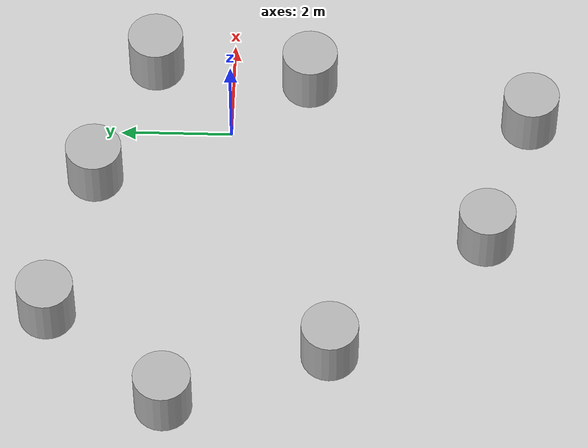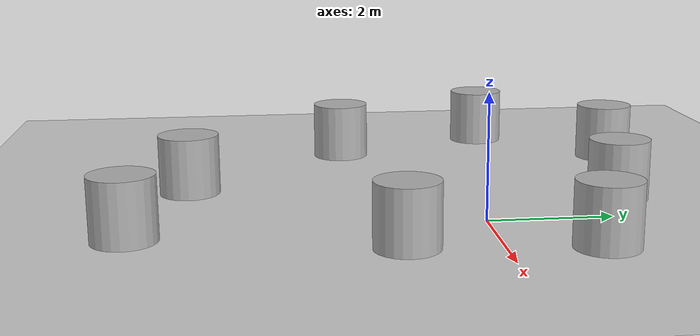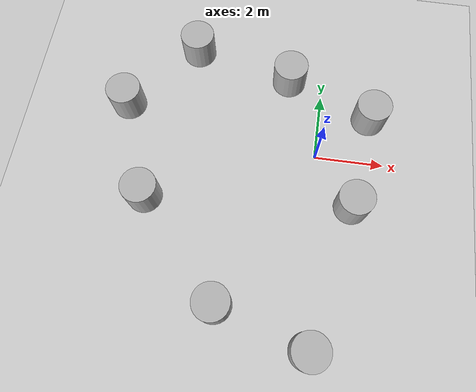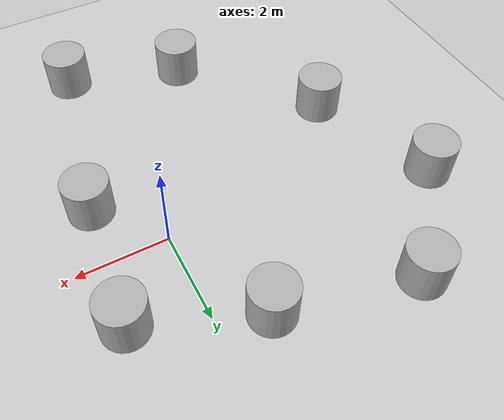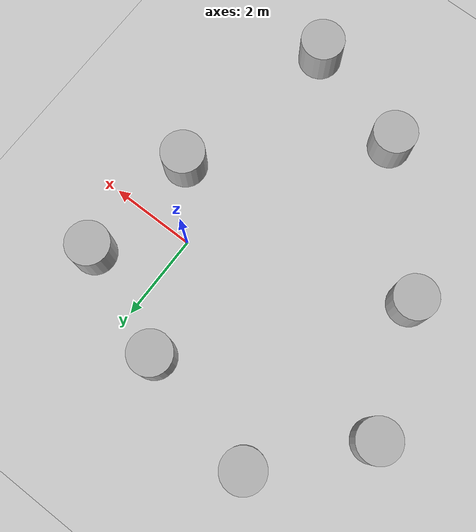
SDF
<sdf version='1.10'>
  <world name='default'>
    <plugin name='gz::sim::systems::Physics' filename='gz-sim-physics-system'/>
    <plugin name='gz::sim::systems::UserCommands' filename='gz-sim-user-commands-system'/>
    <plugin name='gz::sim::systems::SceneBroadcaster' filename='gz-sim-scene-broadcaster-system'/>
    <plugin name='gz::sim::systems::Sensors' filename='gz-sim-sensors-system'>
      <render_engine>ogre2</render_engine>
    </plugin>
    <plugin name='gz::sim::systems::Imu' filename='gz-sim-imu-system'/>
    <scene>
      <shadows>false</shadows>
      <ambient>0.400000006 0.400000006 0.400000006 1</ambient>
      <background>0.699999988 0.699999988 0.699999988 1</background>
    </scene>
    <physics name='3ms' type='ode'>
      <max_step_size>0.0030000000000000001</max_step_size>
      <real_time_factor>1</real_time_factor>
      <real_time_update_rate>1000</real_time_update_rate>
    </physics>
    <gravity>0 0 -9.8000000000000007</gravity>
    <magnetic_field>5.5644999999999998e-06 2.2875799999999999e-05 -4.2388400000000002e-05</magnetic_field>
    <atmosphere type='adiabatic'/>
    <model name='ground_plane'>
      <static>true</static>
      <link name='link'>
        <collision name='collision'>
          <geometry>
            <plane>
              <normal>0 0 1</normal>
              <size>100 100</size>
            </plane>
          </geometry>
          <max_contacts>10</max_contacts>
          <surface>
            <friction>
              <ode/>
            </friction>
            <bounce/>
            <contact/>
          </surface>
        </collision>
        <visual name='visual'>
          <geometry>
            <plane>
              <normal>0 0 1</normal>
              <size>100 100</size>
            </plane>
          </geometry>
          <material>
            <ambient>0.800000012 0.800000012 0.800000012 1</ambient>
            <diffuse>0.800000012 0.800000012 0.800000012 1</diffuse>
            <specular>0.800000012 0.800000012 0.800000012 1</specular>
          </material>
        </visual>
        <pose>0 0 0 0 0 0</pose>
        <inertial>
          <pose>0 0 0 0 0 0</pose>
          <mass>1</mass>
          <inertia>
            <ixx>1</ixx>
            <ixy>0</ixy>
            <ixz>0</ixz>
            <iyy>1</iyy>
            <iyz>0</iyz>
            <izz>1</izz>
          </inertia>
        </inertial>
        <enable_wind>false</enable_wind>
      </link>
      <pose>0 0 0 0 0 0</pose>
      <self_collide>false</self_collide>
    </model>
    <model name='cylinder'>
      <pose>1.4766410088904172 1.4310874098098805 0.49999996682720754 1.1689910068318182e-16 -6.0063454441209493e-17 -8.0045985247784375e-17</pose>
      <link name='cylinder_link'>
        <inertial>
          <inertia>
            <ixx>0.14580000000000001</ixx>
            <ixy>0</ixy>
            <ixz>0</ixz>
            <iyy>0.14580000000000001</iyy>
            <iyz>0</iyz>
            <izz>0.125</izz>
          </inertia>
          <mass>1</mass>
          <pose>0 0 0 0 0 0</pose>
        </inertial>
        <collision name='cylinder_collision'>
          <geometry>
            <cylinder>
              <radius>0.5</radius>
              <length>1</length>
            </cylinder>
          </geometry>
          <surface>
            <friction>
              <ode/>
            </friction>
            <bounce/>
            <contact/>
          </surface>
        </collision>
        <visual name='cylinder_visual'>
          <geometry>
            <cylinder>
              <radius>0.5</radius>
              <length>1</length>
            </cylinder>
          </geometry>
          <material>
            <ambient>0.300000012 0.300000012 0.300000012 1</ambient>
            <diffuse>0.699999988 0.699999988 0.699999988 1</diffuse>
            <specular>1 1 1 1</specular>
          </material>
        </visual>
        <pose>0 0 0 0 0 0</pose>
        <enable_wind>false</enable_wind>
      </link>
      <static>false</static>
      <self_collide>false</self_collide>
    </model>
    <model name='cylinder_0'>
      <pose>1.1557384487515403 -1.3891793147319604 0.49999996682720754 -2.2868565623285523e-17 -1.7398193991398005e-17 -3.206849656597838e-17</pose>
      <link name='cylinder_link'>
        <inertial>
          <inertia>
            <ixx>0.14580000000000001</ixx>
            <ixy>0</ixy>
            <ixz>0</ixz>
            <iyy>0.14580000000000001</iyy>
            <iyz>0</iyz>
            <izz>0.125</izz>
          </inertia>
          <mass>1</mass>
          <pose>0 0 0 0 0 0</pose>
        </inertial>
        <collision name='cylinder_collision'>
          <geometry>
            <cylinder>
              <radius>0.5</radius>
              <length>1</length>
            </cylinder>
          </geometry>
          <surface>
            <friction>
              <ode/>
            </friction>
            <bounce/>
            <contact/>
          </surface>
        </collision>
        <visual name='cylinder_visual'>
          <geometry>
            <cylinder>
              <radius>0.5</radius>
              <length>1</length>
            </cylinder>
          </geometry>
          <material>
            <ambient>0.300000012 0.300000012 0.300000012 1</ambient>
            <diffuse>0.699999988 0.699999988 0.699999988 1</diffuse>
            <specular>1 1 1 1</specular>
          </material>
        </visual>
        <pose>0 0 0 0 0 0</pose>
        <enable_wind>false</enable_wind>
      </link>
      <static>false</static>
      <self_collide>false</self_collide>
    </model>
    <model name='cylinder_1'>
      <pose>0.31308068475809381 -5.3950886503807567 0.49999996682720754 1.2381675438170359e-16 -8.4270405069744376e-17 -3.8615990132845946e-17</pose>
      <link name='cylinder_link'>
        <inertial>
          <inertia>
            <ixx>0.14580000000000001</ixx>
            <ixy>0</ixy>
            <ixz>0</ixz>
            <iyy>0.14580000000000001</iyy>
            <iyz>0</iyz>
            <izz>0.125</izz>
          </inertia>
          <mass>1</mass>
          <pose>0 0 0 0 0 0</pose>
        </inertial>
        <collision name='cylinder_collision'>
          <geometry>
            <cylinder>
              <radius>0.5</radius>
              <length>1</length>
            </cylinder>
          </geometry>
          <surface>
            <friction>
              <ode/>
            </friction>
            <bounce/>
            <contact/>
          </surface>
        </collision>
        <visual name='cylinder_visual'>
          <geometry>
            <cylinder>
              <radius>0.5</radius>
              <length>1</length>
            </cylinder>
          </geometry>
          <material>
            <ambient>0.300000012 0.300000012 0.300000012 1</ambient>
            <diffuse>0.699999988 0.699999988 0.699999988 1</diffuse>
            <specular>1 1 1 1</specular>
          </material>
        </visual>
        <pose>0 0 0 0 0 0</pose>
        <enable_wind>false</enable_wind>
      </link>
      <static>false</static>
      <self_collide>false</self_collide>
    </model>
    <model name='cylinder_2'>
      <pose>-2.2534650888815815 -4.5907966252219001 0.49999996682720754 -2.9971418290909645e-17 -7.046109403885912e-18 -3.8588504932988534e-17</pose>
      <link name='cylinder_link'>
        <inertial>
          <inertia>
            <ixx>0.14580000000000001</ixx>
            <ixy>0</ixy>
            <ixz>0</ixz>
            <iyy>0.14580000000000001</iyy>
            <iyz>0</iyz>
            <izz>0.125</izz>
          </inertia>
          <mass>1</mass>
          <pose>0 0 0 0 0 0</pose>
        </inertial>
        <collision name='cylinder_collision'>
          <geometry>
            <cylinder>
              <radius>0.5</radius>
              <length>1</length>
            </cylinder>
          </geometry>
          <surface>
            <friction>
              <ode/>
            </friction>
            <bounce/>
            <contact/>
          </surface>
        </collision>
        <visual name='cylinder_visual'>
          <geometry>
            <cylinder>
              <radius>0.5</radius>
              <length>1</length>
            </cylinder>
          </geometry>
          <material>
            <ambient>0.300000012 0.300000012 0.300000012 1</ambient>
            <diffuse>0.699999988 0.699999988 0.699999988 1</diffuse>
            <specular>1 1 1 1</specular>
          </material>
        </visual>
        <pose>0 0 0 0 0 0</pose>
        <enable_wind>false</enable_wind>
      </link>
      <static>false</static>
      <self_collide>false</self_collide>
    </model>
    <model name='cylinder_3'>
      <pose>-4.7035077605472742 -1.8659362458652935 0.49999996682720754 1.0402452997082507e-16 -5.5728196839946423e-17 -2.1605442363130336e-17</pose>
      <link name='cylinder_link'>
        <inertial>
          <inertia>
            <ixx>0.14580000000000001</ixx>
            <ixy>0</ixy>
            <ixz>0</ixz>
            <iyy>0.14580000000000001</iyy>
            <iyz>0</iyz>
            <izz>0.125</izz>
          </inertia>
          <mass>1</mass>
          <pose>0 0 0 0 0 0</pose>
        </inertial>
        <collision name='cylinder_collision'>
          <geometry>
            <cylinder>
              <radius>0.5</radius>
              <length>1</length>
            </cylinder>
          </geometry>
          <surface>
            <friction>
              <ode/>
            </friction>
            <bounce/>
            <contact/>
          </surface>
        </collision>
        <visual name='cylinder_visual'>
          <geometry>
            <cylinder>
              <radius>0.5</radius>
              <length>1</length>
            </cylinder>
          </geometry>
          <material>
            <ambient>0.300000012 0.300000012 0.300000012 1</ambient>
            <diffuse>0.699999988 0.699999988 0.699999988 1</diffuse>
            <specular>1 1 1 1</specular>
          </material>
        </visual>
        <pose>0 0 0 0 0 0</pose>
        <enable_wind>false</enable_wind>
      </link>
      <static>false</static>
      <self_collide>false</self_collide>
    </model>
    <model name='cylinder_4'>
      <pose>-5.7860830982029174 0.97749264049282258 0.49999996682720754 2.827687920264601e-17 -5.5506594640310339e-17 4.9729845273893652e-21</pose>
      <link name='cylinder_link'>
        <inertial>
          <inertia>
            <ixx>0.14580000000000001</ixx>
            <ixy>0</ixy>
            <ixz>0</ixz>
            <iyy>0.14580000000000001</iyy>
            <iyz>0</iyz>
            <izz>0.125</izz>
          </inertia>
          <mass>1</mass>
          <pose>0 0 0 0 0 0</pose>
        </inertial>
        <collision name='cylinder_collision'>
          <geometry>
            <cylinder>
              <radius>0.5</radius>
              <length>1</length>
            </cylinder>
          </geometry>
          <surface>
            <friction>
              <ode/>
            </friction>
            <bounce/>
            <contact/>
          </surface>
        </collision>
        <visual name='cylinder_visual'>
          <geometry>
            <cylinder>
              <radius>0.5</radius>
              <length>1</length>
            </cylinder>
          </geometry>
          <material>
            <ambient>0.300000012 0.300000012 0.300000012 1</ambient>
            <diffuse>0.699999988 0.699999988 0.699999988 1</diffuse>
            <specular>1 1 1 1</specular>
          </material>
        </visual>
        <pose>0 0 0 0 0 0</pose>
        <enable_wind>false</enable_wind>
      </link>
      <static>false</static>
      <self_collide>false</self_collide>
    </model>
    <model name='cylinder_5'>
      <pose>-1.0355067712805544 2.4192911033682716 0.49999996682720754 -2.9113065133495939e-17 3.2874945512119725e-17 -2.4411462166287617e-17</pose>
      <link name='cylinder_link'>
        <inertial>
          <inertia>
            <ixx>0.14580000000000001</ixx>
            <ixy>0</ixy>
            <ixz>0</ixz>
            <iyy>0.14580000000000001</iyy>
            <iyz>0</iyz>
            <izz>0.125</izz>
          </inertia>
          <mass>1</mass>
          <pose>0 0 0 0 0 0</pose>
        </inertial>
        <collision name='cylinder_collision'>
          <geometry>
            <cylinder>
              <radius>0.5</radius>
              <length>1</length>
            </cylinder>
          </geometry>
          <surface>
            <friction>
              <ode/>
            </friction>
            <bounce/>
            <contact/>
          </surface>
        </collision>
        <visual name='cylinder_visual'>
          <geometry>
            <cylinder>
              <radius>0.5</radius>
              <length>1</length>
            </cylinder>
          </geometry>
          <material>
            <ambient>0.300000012 0.300000012 0.300000012 1</ambient>
            <diffuse>0.699999988 0.699999988 0.699999988 1</diffuse>
            <specular>1 1 1 1</specular>
          </material>
        </visual>
        <pose>0 0 0 0 0 0</pose>
        <enable_wind>false</enable_wind>
      </link>
      <static>false</static>
      <self_collide>false</self_collide>
    </model>
    <model name='cylinder_6'>
      <pose>-3.9773009269833914 3.0963528152874451 0.49999996682720754 -2.0205656958117209e-17 5.6954223673878051e-17 7.8138189186180575e-20</pose>
      <link name='cylinder_link'>
        <inertial>
          <inertia>
            <ixx>0.14580000000000001</ixx>
            <ixy>0</ixy>
            <ixz>0</ixz>
            <iyy>0.14580000000000001</iyy>
            <iyz>0</iyz>
            <izz>0.125</izz>
          </inertia>
          <mass>1</mass>
          <pose>0 0 0 0 0 0</pose>
        </inertial>
        <collision name='cylinder_collision'>
          <geometry>
            <cylinder>
              <radius>0.5</radius>
              <length>1</length>
            </cylinder>
          </geometry>
          <surface>
            <friction>
              <ode/>
            </friction>
            <bounce/>
            <contact/>
          </surface>
        </collision>
        <visual name='cylinder_visual'>
          <geometry>
            <cylinder>
              <radius>0.5</radius>
              <length>1</length>
            </cylinder>
          </geometry>
          <material>
            <ambient>0.300000012 0.300000012 0.300000012 1</ambient>
            <diffuse>0.699999988 0.699999988 0.699999988 1</diffuse>
            <specular>1 1 1 1</specular>
          </material>
        </visual>
        <pose>0 0 0 0 0 0</pose>
        <enable_wind>false</enable_wind>
      </link>
      <static>false</static>
      <self_collide>false</self_collide>
    </model>
    <light name='sun' type='directional'>
      <pose>0 0 10 0 0 0</pose>
      <cast_shadows>false</cast_shadows>
      <intensity>1</intensity>
      <direction>-0.5 0.10000000000000001 -0.90000000000000002</direction>
      <diffuse>0.800000012 0.800000012 0.800000012 1</diffuse>
      <specular>0.800000012 0.800000012 0.800000012 1</specular>
      <attenuation>
        <range>1000</range>
        <linear>0.01</linear>
        <constant>0.90000000000000002</constant>
        <quadratic>0.001</quadratic>
      </attenuation>
      <spot>
        <inner_angle>0</inner_angle>
        <outer_angle>0</outer_angle>
        <falloff>0</falloff>
      </spot>
    </light>
  </world>
</sdf>
